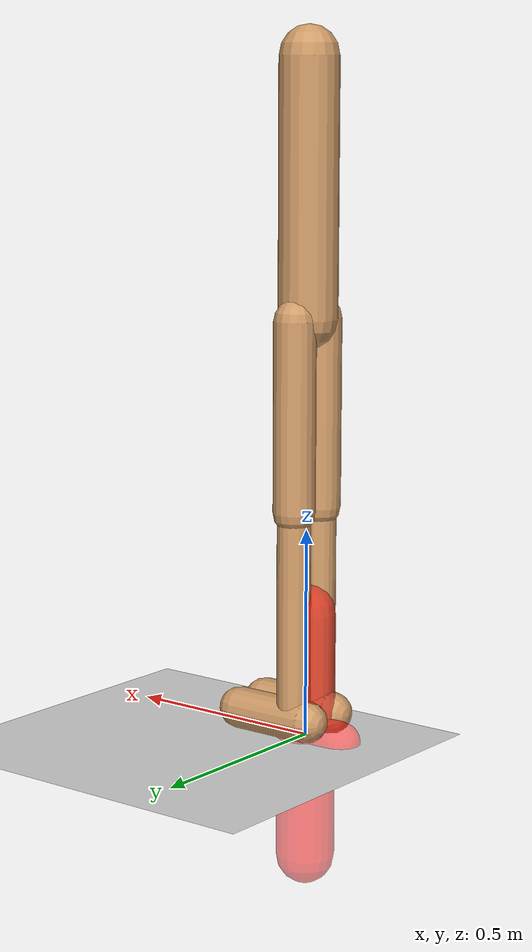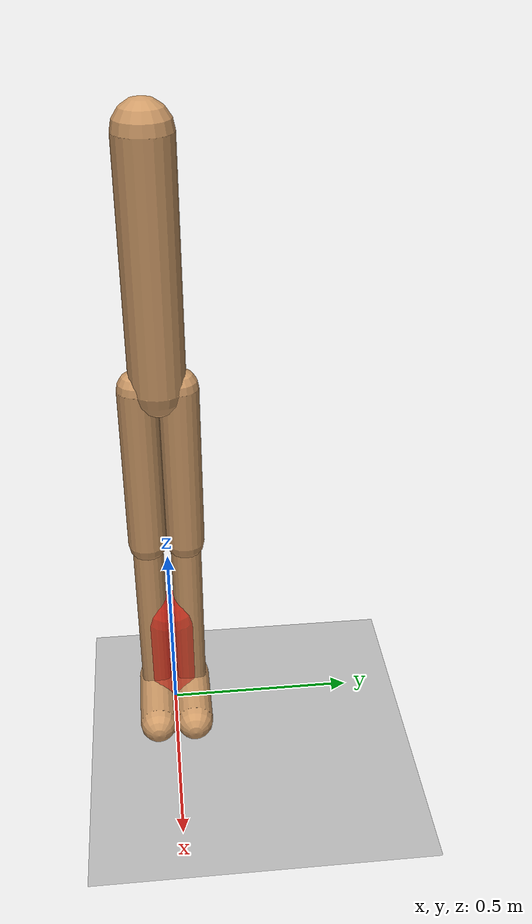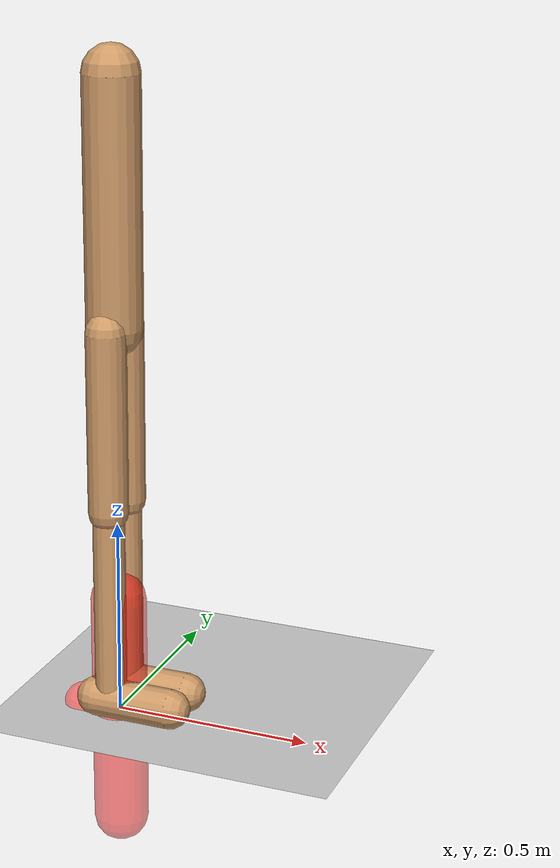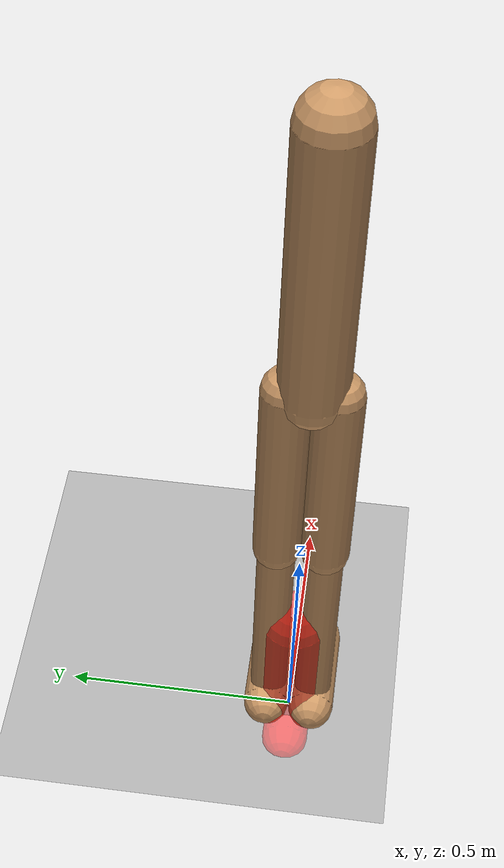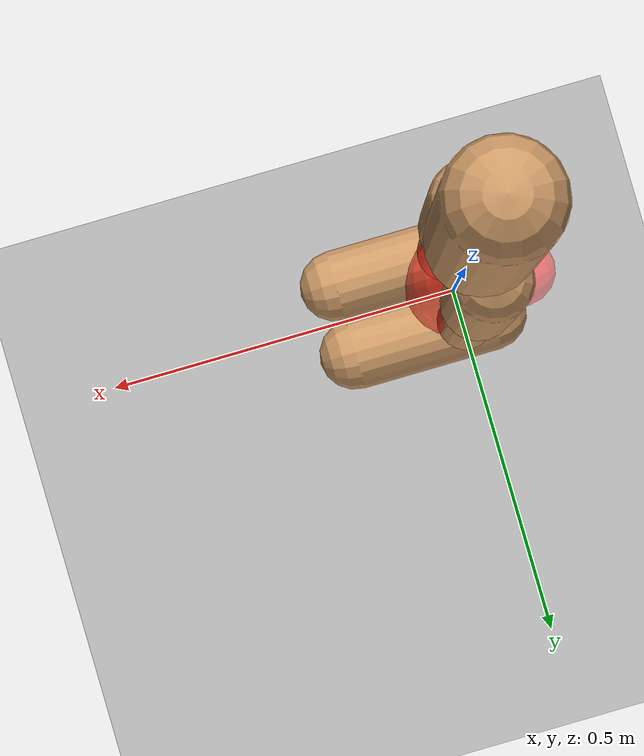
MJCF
<mujoco model="planar walker">

  <option timestep="0.0025"/>

  <statistic extent="2" center="0 0 1"/>
  <asset>
        <texture type="skybox" builtin="gradient" rgb1=".4 .5 .6" rgb2="0 0 0"
            width="100" height="100"/>
        <texture builtin="flat" height="1278" mark="cross" markrgb="1 1 1" name="texgeom" random="0.01" rgb1="0.8 0.6 0.4" rgb2="0.8 0.6 0.4" type="cube" width="127"/>
        <material name="self" texture="texgeom" texuniform="true"/>
        <material name="mocap_material" rgba='1. 0. 0. 0.5'/>
        <material name='grid' reflectance='0.000000' texrepeat='1 1' texture='texplane' texuniform='true'/>
        <texture builtin='checker' height='512' name='texplane' rgb1='0.2 0.2 0.2' rgb2='0.3 0.3 0.3' type='2d' width='512'/>
  </asset>

  <default>
    <joint damping=".1" armature="0.01" limited="true" solimplimit="0 .99 .01"/>
    <geom contype="1" conaffinity="0" friction=".7 .1 .1"/>
    <motor ctrlrange="-1 1" ctrllimited="true"/>
    <site size="0.01"/>
    <default class="walker">
      <geom material="self" type="capsule"/>
      <joint axis="0 -1 0"/>
    </default>
  </default>

  <worldbody>
    <body name="floor" pos="0 0 0">
      <geom name="floor" type="plane" conaffinity="1" pos="248 0 0" size="250 .8 .2" material="grid" zaxis="0 0 1"/>
    </body>

    <body mocap='true' name="mocap_torso" pos="0 0 0" >
      <geom type='capsule' name="mocap_torso" size="0.07 0.3" material="mocap_material"/>
    </body>

    <body mocap='true' name="mocap_right_thigh" pos="0 0 0" >
      <geom type='capsule' name="mocap_right_thigh" size="0.05 0.225" material="mocap_material"/>
    </body>

    <body mocap='true' name="mocap_right_leg" pos="0 0 0" >
      <geom type='capsule' name="mocap_right_leg" size="0.04 0.25" material="mocap_material"/>
    </body>

    <body mocap='true' name="mocap_right_foot" pos="0 0 0" >
      <geom type='capsule' name="mocap_right_foot" zaxis="1 0 0" size="0.05 0.1" material="mocap_material"/>
    </body>

    <body mocap='true' name="mocap_left_thigh" pos="0 0 0" >
      <geom type='capsule' name="mocap_left_thigh" size="0.05 0.225" material="mocap_material"/>
    </body>

    <body mocap='true' name="mocap_left_leg" pos="0 0 0" >
      <geom type='capsule' name="mocap_left_leg" size="0.04 0.25" material="mocap_material"/>
    </body>

    <body mocap='true' name="mocap_left_foot" pos="0 0 0" >
      <geom type='capsule' name="mocap_left_foot" zaxis="1 0 0" size="0.05 0.1" material="mocap_material"/>
    </body>

    <body name="torso" pos="0 0 1.3" childclass="walker">
      <light name="light" pos="0 0 2" mode="trackcom"/>
      <camera name="side" pos="0 -2 .7" euler="60 0 0" mode="trackcom"/>
      <camera name="back" pos="-2 0 .5" xyaxes="0 -1 0 1 0 3" mode="trackcom"/>
      <joint name="rootz" axis="0 0 1" type="slide" limited="false" armature="0" damping="0"/>
      <joint name="rootx" axis="1 0 0" type="slide" limited="false" armature="0" damping="0"/>
      <joint name="rooty" axis="0 1 0" type="hinge" limited="false" armature="0" damping="0"/>
      <geom name="torso" size="0.07 0.3"/>
      <body name="right_thigh" pos="0 -.05 -0.3">
        <joint name="right_hip" range="-20 100"/>
        <geom name="right_thigh" pos="0 0 -0.225" size="0.05 0.225"/>
        <body name="right_leg" pos="0 0 -0.7">
          <joint name="right_knee" pos="0 0 0.25" range="-150 0"/>
          <geom name="right_leg" size="0.04 0.25"/>
          <body name="right_foot" pos="0.06 0 -0.25">
            <joint name="right_ankle" pos="-0.06 0 0" range="-45 45"/>
            <geom name="right_foot" zaxis="1 0 0" size="0.05 0.1"/>
          </body>
        </body>
      </body>

      <body name="left_thigh" pos="0 .05 -0.3" >
        <joint name="left_hip" range="-20 100"/>
        <geom name="left_thigh" pos="0 0 -0.225" size="0.05 0.225"/>
        <body name="left_leg" pos="0 0 -0.7">
          <joint name="left_knee" pos="0 0 0.25" range="-150 0"/>
          <geom name="left_leg" size="0.04 0.25"/>
          <body name="left_foot" pos="0.06 0 -0.25">
            <joint name="left_ankle" pos="-0.06 0 0" range="-45 45"/>
            <geom name="left_foot" zaxis="1 0 0" size="0.05 0.1"/>
          </body>
        </body>
      </body>
    </body>
  </worldbody>

  <sensor>
    <subtreelinvel name="torso_subtreelinvel" body="torso"/>
  </sensor>

  <actuator>
    <motor name="right_hip" joint="right_hip" gear="100"/>
    <motor name="right_knee" joint="right_knee" gear="50"/>
    <motor name="right_ankle" joint="right_ankle" gear="20"/>
    <motor name="left_hip" joint="left_hip" gear="100"/>
    <motor name="left_knee" joint="left_knee" gear="50"/>
    <motor name="left_ankle" joint="left_ankle" gear="20"/>
  </actuator>

  <equality>
    <weld name='world_root' active="false" body1='floor' body2='torso' relpose="0. 0. 2. 1. 0 0 0"/>

    <weld name='mocap_torso' active="false" body1='mocap_torso' body2='torso' relpose="0. 0. 0. 1. 0 0 0"/>

    <weld name='mocap_right_thigh' active="false" body1='right_thigh' body2='mocap_right_thigh' relpose="0 0 -0.225 1. 0 0 0"/>
    <weld name='mocap_right_leg' active="false" body1='right_leg' body2='mocap_right_leg'  relpose="0 0 0 1. 0 0 0" />
    <weld name='mocap_right_foot' active="false" body1='right_foot' body2='mocap_right_foot'  relpose="0. 0. 0. 1. 0 0 0"/>

    <weld name='mocap_left_thigh' active="false" body1='left_thigh' body2='mocap_left_thigh' relpose="0 0 -0.225 1. 0 0 0"/>
    <weld name='mocap_left_leg' active="false" body1='left_leg' body2='mocap_left_leg'  relpose="0 0 0 1. 0 0 0" />
    <weld name='mocap_left_foot' active="false" body1='left_foot' body2='mocap_left_foot'  relpose="0. 0. 0. 1. 0 0 0"/>

  </equality>

</mujoco>
